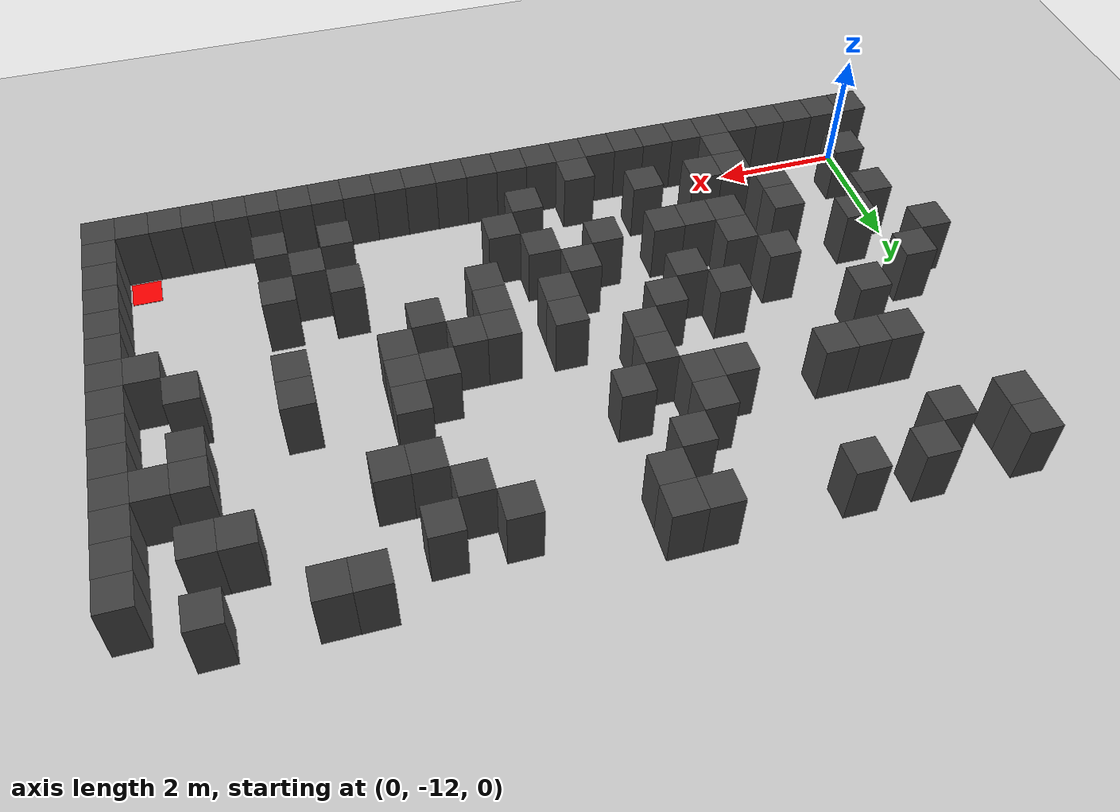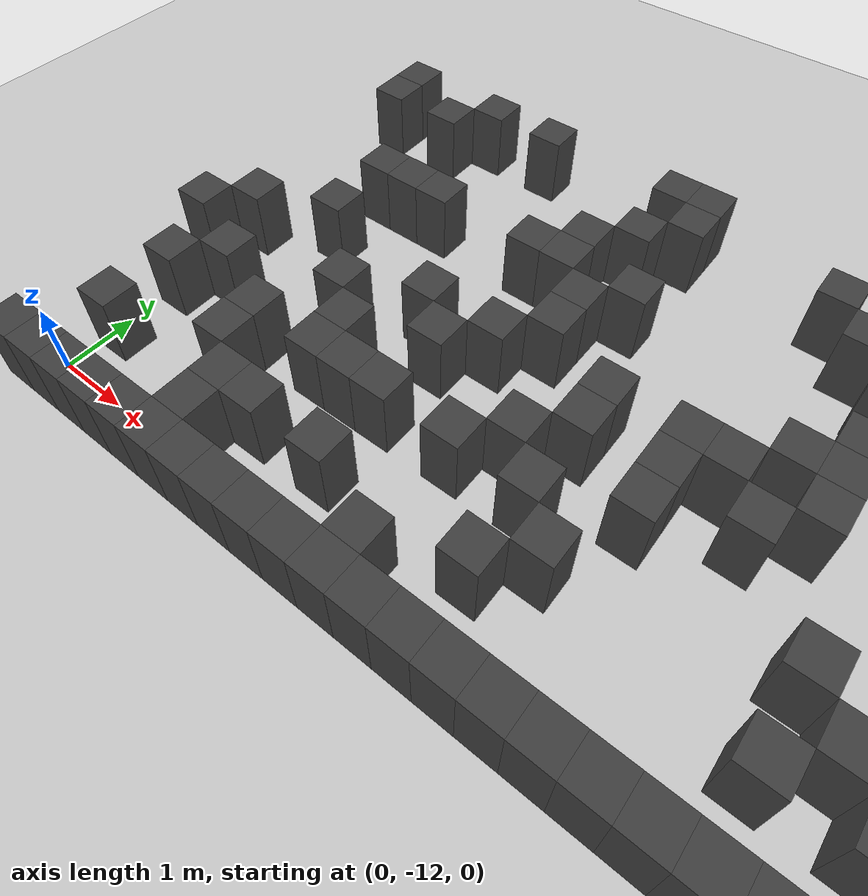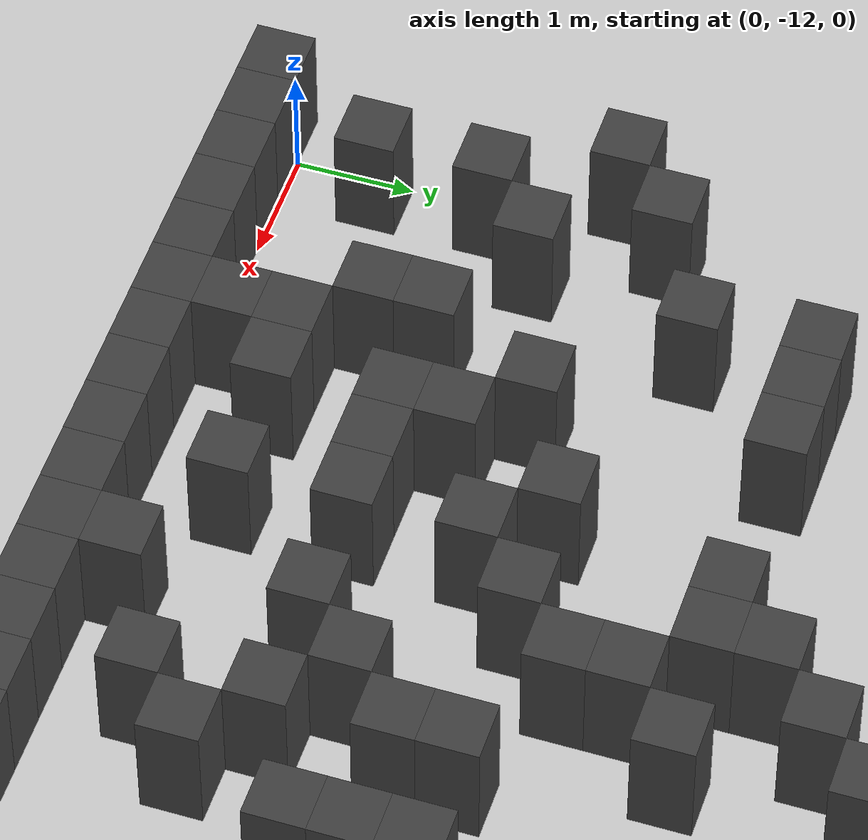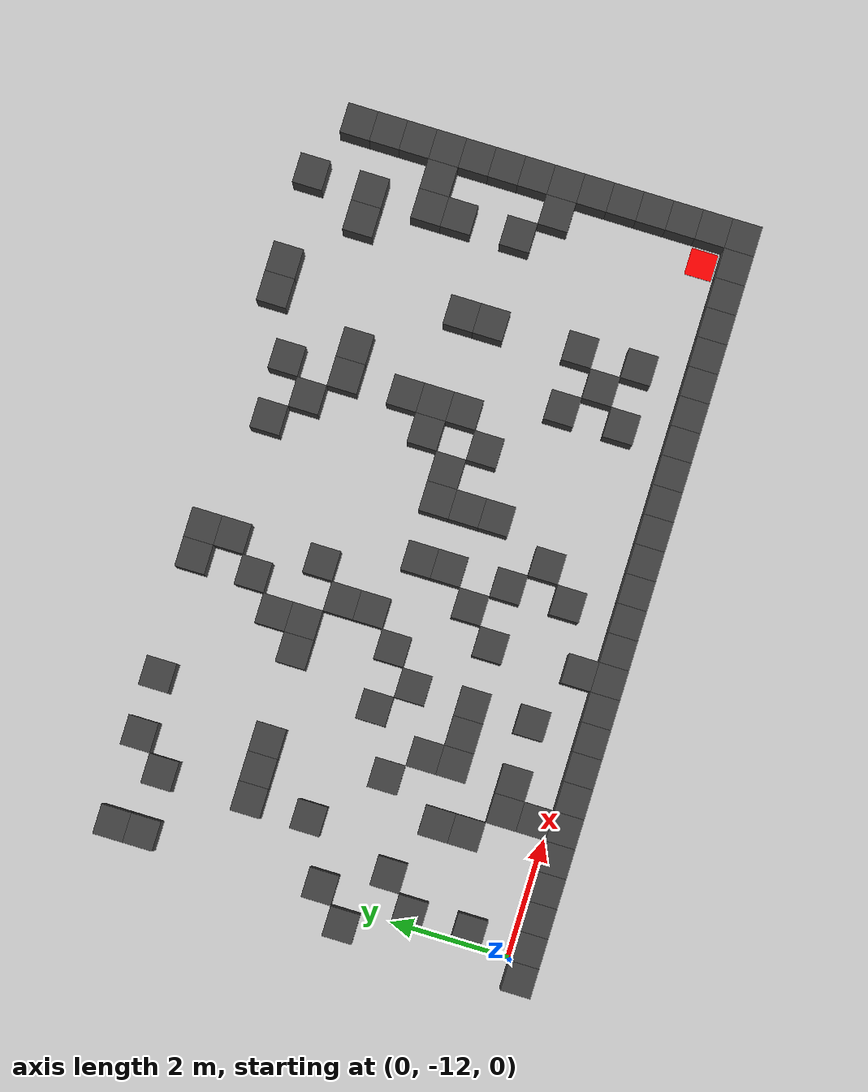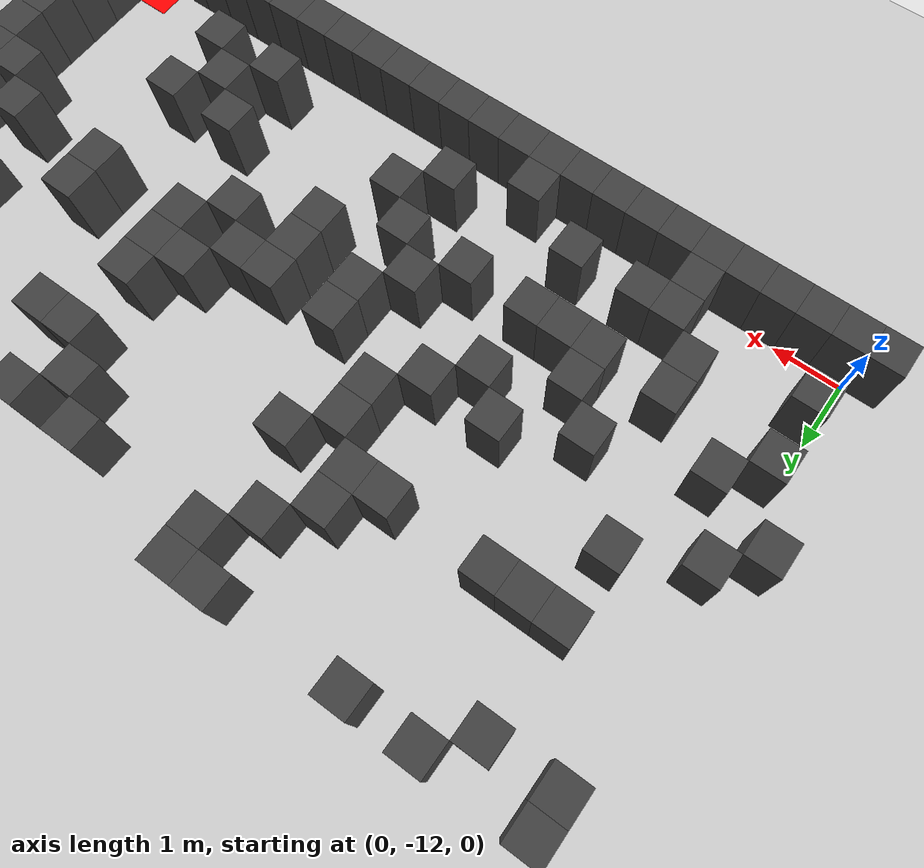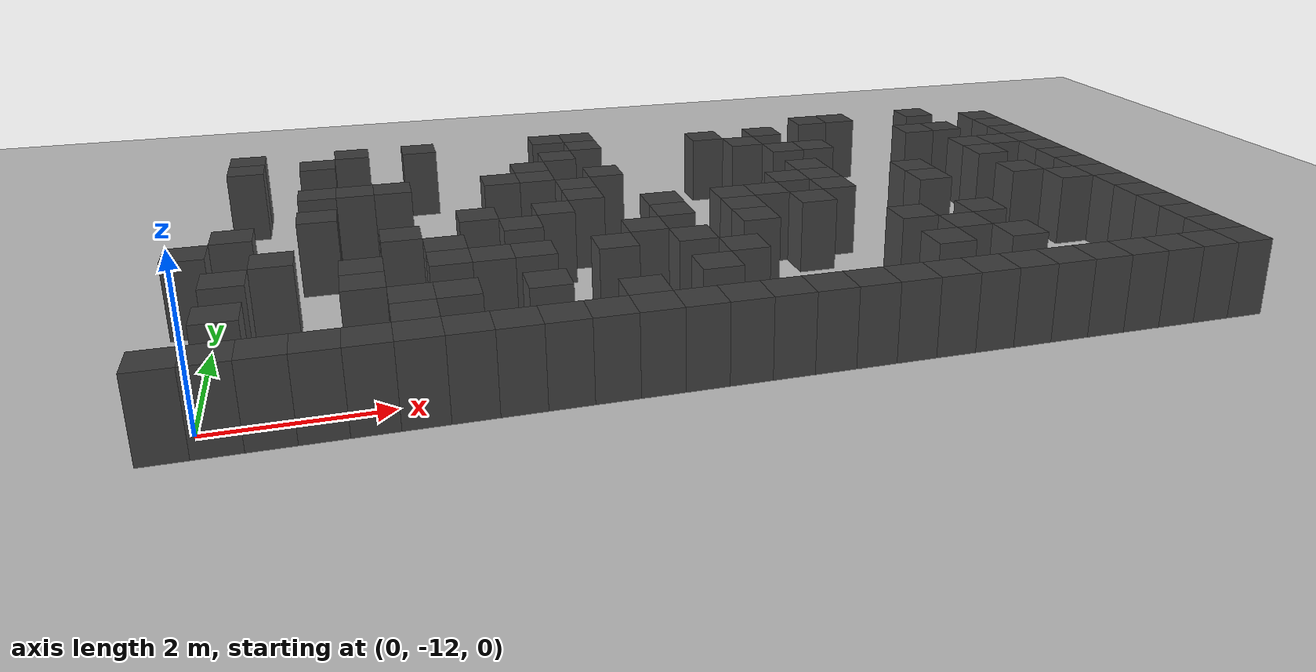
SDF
<sdf version="1.7">
 <world name="map_4557">
  <model name="ground_plane">
   <static>true</static>
   <link name="link">
    <collision name="collision">
     <geometry><plane><normal>0 0 1</normal><size>200 200</size></plane></geometry>
    </collision>
    <visual name="visual">
     <geometry><plane><normal>0 0 1</normal><size>200 200</size></plane></geometry>
     <material><ambient>0.8 0.8 0.8 1</ambient><diffuse>0.8 0.8 0.8 1</diffuse></material>
    </visual>
   </link>
  </model>
  <model name="maze_environment">
   <static>true</static>
   <link name="wall_483">
    <pose>0.250 -5.250 0.500 0 0 0</pose>
    <collision name="col"><geometry><box><size>0.5 0.5 1.0</size></box></geometry></collision>
    <visual name="vis">
     <geometry><box><size>0.5 0.5 1.0</size></box></geometry>
     <material><ambient>0.15 0.15 0.15 1</ambient><diffuse>0.25 0.25 0.25 1</diffuse></material>
    </visual>
   </link>
   <link name="wall_484">
    <pose>1.750 -5.250 0.500 0 0 0</pose>
    <collision name="col"><geometry><box><size>0.5 0.5 1.0</size></box></geometry></collision>
    <visual name="vis">
     <geometry><box><size>0.5 0.5 1.0</size></box></geometry>
     <material><ambient>0.15 0.15 0.15 1</ambient><diffuse>0.25 0.25 0.25 1</diffuse></material>
    </visual>
   </link>
   <link name="wall_485">
    <pose>2.750 -5.250 0.500 0 0 0</pose>
    <collision name="col"><geometry><box><size>0.5 0.5 1.0</size></box></geometry></collision>
    <visual name="vis">
     <geometry><box><size>0.5 0.5 1.0</size></box></geometry>
     <material><ambient>0.15 0.15 0.15 1</ambient><diffuse>0.25 0.25 0.25 1</diffuse></material>
    </visual>
   </link>
   <link name="wall_486">
    <pose>4.750 -5.250 0.500 0 0 0</pose>
    <collision name="col"><geometry><box><size>0.5 0.5 1.0</size></box></geometry></collision>
    <visual name="vis">
     <geometry><box><size>0.5 0.5 1.0</size></box></geometry>
     <material><ambient>0.15 0.15 0.15 1</ambient><diffuse>0.25 0.25 0.25 1</diffuse></material>
    </visual>
   </link>
   <link name="wall_487">
    <pose>5.250 -5.250 0.500 0 0 0</pose>
    <collision name="col"><geometry><box><size>0.5 0.5 1.0</size></box></geometry></collision>
    <visual name="vis">
     <geometry><box><size>0.5 0.5 1.0</size></box></geometry>
     <material><ambient>0.15 0.15 0.15 1</ambient><diffuse>0.25 0.25 0.25 1</diffuse></material>
    </visual>
   </link>
   <link name="wall_488">
    <pose>9.250 -5.250 0.500 0 0 0</pose>
    <collision name="col"><geometry><box><size>0.5 0.5 1.0</size></box></geometry></collision>
    <visual name="vis">
     <geometry><box><size>0.5 0.5 1.0</size></box></geometry>
     <material><ambient>0.15 0.15 0.15 1</ambient><diffuse>0.25 0.25 0.25 1</diffuse></material>
    </visual>
   </link>
   <link name="wall_489">
    <pose>9.750 -5.250 0.500 0 0 0</pose>
    <collision name="col"><geometry><box><size>0.5 0.5 1.0</size></box></geometry></collision>
    <visual name="vis">
     <geometry><box><size>0.5 0.5 1.0</size></box></geometry>
     <material><ambient>0.15 0.15 0.15 1</ambient><diffuse>0.25 0.25 0.25 1</diffuse></material>
    </visual>
   </link>
   <link name="wall_490">
    <pose>11.250 -5.250 0.500 0 0 0</pose>
    <collision name="col"><geometry><box><size>0.5 0.5 1.0</size></box></geometry></collision>
    <visual name="vis">
     <geometry><box><size>0.5 0.5 1.0</size></box></geometry>
     <material><ambient>0.15 0.15 0.15 1</ambient><diffuse>0.25 0.25 0.25 1</diffuse></material>
    </visual>
   </link>
   <link name="wall_499">
    <pose>0.250 -5.750 0.500 0 0 0</pose>
    <collision name="col"><geometry><box><size>0.5 0.5 1.0</size></box></geometry></collision>
    <visual name="vis">
     <geometry><box><size>0.5 0.5 1.0</size></box></geometry>
     <material><ambient>0.15 0.15 0.15 1</ambient><diffuse>0.25 0.25 0.25 1</diffuse></material>
    </visual>
   </link>
   <link name="wall_500">
    <pose>1.250 -5.750 0.500 0 0 0</pose>
    <collision name="col"><geometry><box><size>0.5 0.5 1.0</size></box></geometry></collision>
    <visual name="vis">
     <geometry><box><size>0.5 0.5 1.0</size></box></geometry>
     <material><ambient>0.15 0.15 0.15 1</ambient><diffuse>0.25 0.25 0.25 1</diffuse></material>
    </visual>
   </link>
   <link name="wall_501">
    <pose>5.250 -5.750 0.500 0 0 0</pose>
    <collision name="col"><geometry><box><size>0.5 0.5 1.0</size></box></geometry></collision>
    <visual name="vis">
     <geometry><box><size>0.5 0.5 1.0</size></box></geometry>
     <material><ambient>0.15 0.15 0.15 1</ambient><diffuse>0.25 0.25 0.25 1</diffuse></material>
    </visual>
   </link>
   <link name="wall_502">
    <pose>7.250 -5.750 0.500 0 0 0</pose>
    <collision name="col"><geometry><box><size>0.5 0.5 1.0</size></box></geometry></collision>
    <visual name="vis">
     <geometry><box><size>0.5 0.5 1.0</size></box></geometry>
     <material><ambient>0.15 0.15 0.15 1</ambient><diffuse>0.25 0.25 0.25 1</diffuse></material>
    </visual>
   </link>
   <link name="wall_503">
    <pose>8.250 -5.750 0.500 0 0 0</pose>
    <collision name="col"><geometry><box><size>0.5 0.5 1.0</size></box></geometry></collision>
    <visual name="vis">
     <geometry><box><size>0.5 0.5 1.0</size></box></geometry>
     <material><ambient>0.15 0.15 0.15 1</ambient><diffuse>0.25 0.25 0.25 1</diffuse></material>
    </visual>
   </link>
   <link name="wall_504">
    <pose>12.250 -5.750 0.500 0 0 0</pose>
    <collision name="col"><geometry><box><size>0.5 0.5 1.0</size></box></geometry></collision>
    <visual name="vis">
     <geometry><box><size>0.5 0.5 1.0</size></box></geometry>
     <material><ambient>0.15 0.15 0.15 1</ambient><diffuse>0.25 0.25 0.25 1</diffuse></material>
    </visual>
   </link>
   <link name="wall_513">
    <pose>4.750 -6.250 0.500 0 0 0</pose>
    <collision name="col"><geometry><box><size>0.5 0.5 1.0</size></box></geometry></collision>
    <visual name="vis">
     <geometry><box><size>0.5 0.5 1.0</size></box></geometry>
     <material><ambient>0.15 0.15 0.15 1</ambient><diffuse>0.25 0.25 0.25 1</diffuse></material>
    </visual>
   </link>
   <link name="wall_514">
    <pose>7.750 -6.250 0.500 0 0 0</pose>
    <collision name="col"><geometry><box><size>0.5 0.5 1.0</size></box></geometry></collision>
    <visual name="vis">
     <geometry><box><size>0.5 0.5 1.0</size></box></geometry>
     <material><ambient>0.15 0.15 0.15 1</ambient><diffuse>0.25 0.25 0.25 1</diffuse></material>
    </visual>
   </link>
   <link name="wall_515">
    <pose>10.750 -6.250 0.500 0 0 0</pose>
    <collision name="col"><geometry><box><size>0.5 0.5 1.0</size></box></geometry></collision>
    <visual name="vis">
     <geometry><box><size>0.5 0.5 1.0</size></box></geometry>
     <material><ambient>0.15 0.15 0.15 1</ambient><diffuse>0.25 0.25 0.25 1</diffuse></material>
    </visual>
   </link>
   <link name="wall_516">
    <pose>11.250 -6.250 0.500 0 0 0</pose>
    <collision name="col"><geometry><box><size>0.5 0.5 1.0</size></box></geometry></collision>
    <visual name="vis">
     <geometry><box><size>0.5 0.5 1.0</size></box></geometry>
     <material><ambient>0.15 0.15 0.15 1</ambient><diffuse>0.25 0.25 0.25 1</diffuse></material>
    </visual>
   </link>
   <link name="wall_517">
    <pose>12.250 -6.250 0.500 0 0 0</pose>
    <collision name="col"><geometry><box><size>0.5 0.5 1.0</size></box></geometry></collision>
    <visual name="vis">
     <geometry><box><size>0.5 0.5 1.0</size></box></geometry>
     <material><ambient>0.15 0.15 0.15 1</ambient><diffuse>0.25 0.25 0.25 1</diffuse></material>
    </visual>
   </link>
   <link name="wall_522">
    <pose>4.250 -6.750 0.500 0 0 0</pose>
    <collision name="col"><geometry><box><size>0.5 0.5 1.0</size></box></geometry></collision>
    <visual name="vis">
     <geometry><box><size>0.5 0.5 1.0</size></box></geometry>
     <material><ambient>0.15 0.15 0.15 1</ambient><diffuse>0.25 0.25 0.25 1</diffuse></material>
    </visual>
   </link>
   <link name="wall_523">
    <pose>8.250 -6.750 0.500 0 0 0</pose>
    <collision name="col"><geometry><box><size>0.5 0.5 1.0</size></box></geometry></collision>
    <visual name="vis">
     <geometry><box><size>0.5 0.5 1.0</size></box></geometry>
     <material><ambient>0.15 0.15 0.15 1</ambient><diffuse>0.25 0.25 0.25 1</diffuse></material>
    </visual>
   </link>
   <link name="wall_524">
    <pose>8.750 -6.750 0.500 0 0 0</pose>
    <collision name="col"><geometry><box><size>0.5 0.5 1.0</size></box></geometry></collision>
    <visual name="vis">
     <geometry><box><size>0.5 0.5 1.0</size></box></geometry>
     <material><ambient>0.15 0.15 0.15 1</ambient><diffuse>0.25 0.25 0.25 1</diffuse></material>
    </visual>
   </link>
   <link name="wall_525">
    <pose>12.250 -6.750 0.500 0 0 0</pose>
    <collision name="col"><geometry><box><size>0.5 0.5 1.0</size></box></geometry></collision>
    <visual name="vis">
     <geometry><box><size>0.5 0.5 1.0</size></box></geometry>
     <material><ambient>0.15 0.15 0.15 1</ambient><diffuse>0.25 0.25 0.25 1</diffuse></material>
    </visual>
   </link>
   <link name="wall_530">
    <pose>1.250 -7.250 0.500 0 0 0</pose>
    <collision name="col"><geometry><box><size>0.5 0.5 1.0</size></box></geometry></collision>
    <visual name="vis">
     <geometry><box><size>0.5 0.5 1.0</size></box></geometry>
     <material><ambient>0.15 0.15 0.15 1</ambient><diffuse>0.25 0.25 0.25 1</diffuse></material>
    </visual>
   </link>
   <link name="wall_531">
    <pose>1.750 -7.250 0.500 0 0 0</pose>
    <collision name="col"><geometry><box><size>0.5 0.5 1.0</size></box></geometry></collision>
    <visual name="vis">
     <geometry><box><size>0.5 0.5 1.0</size></box></geometry>
     <material><ambient>0.15 0.15 0.15 1</ambient><diffuse>0.25 0.25 0.25 1</diffuse></material>
    </visual>
   </link>
   <link name="wall_532">
    <pose>2.250 -7.250 0.500 0 0 0</pose>
    <collision name="col"><geometry><box><size>0.5 0.5 1.0</size></box></geometry></collision>
    <visual name="vis">
     <geometry><box><size>0.5 0.5 1.0</size></box></geometry>
     <material><ambient>0.15 0.15 0.15 1</ambient><diffuse>0.25 0.25 0.25 1</diffuse></material>
    </visual>
   </link>
   <link name="wall_533">
    <pose>3.750 -7.250 0.500 0 0 0</pose>
    <collision name="col"><geometry><box><size>0.5 0.5 1.0</size></box></geometry></collision>
    <visual name="vis">
     <geometry><box><size>0.5 0.5 1.0</size></box></geometry>
     <material><ambient>0.15 0.15 0.15 1</ambient><diffuse>0.25 0.25 0.25 1</diffuse></material>
    </visual>
   </link>
   <link name="wall_534">
    <pose>4.250 -7.250 0.500 0 0 0</pose>
    <collision name="col"><geometry><box><size>0.5 0.5 1.0</size></box></geometry></collision>
    <visual name="vis">
     <geometry><box><size>0.5 0.5 1.0</size></box></geometry>
     <material><ambient>0.15 0.15 0.15 1</ambient><diffuse>0.25 0.25 0.25 1</diffuse></material>
    </visual>
   </link>
   <link name="wall_535">
    <pose>5.250 -7.250 0.500 0 0 0</pose>
    <collision name="col"><geometry><box><size>0.5 0.5 1.0</size></box></geometry></collision>
    <visual name="vis">
     <geometry><box><size>0.5 0.5 1.0</size></box></geometry>
     <material><ambient>0.15 0.15 0.15 1</ambient><diffuse>0.25 0.25 0.25 1</diffuse></material>
    </visual>
   </link>
   <link name="wall_536">
    <pose>11.250 -7.250 0.500 0 0 0</pose>
    <collision name="col"><geometry><box><size>0.5 0.5 1.0</size></box></geometry></collision>
    <visual name="vis">
     <geometry><box><size>0.5 0.5 1.0</size></box></geometry>
     <material><ambient>0.15 0.15 0.15 1</ambient><diffuse>0.25 0.25 0.25 1</diffuse></material>
    </visual>
   </link>
   <link name="wall_537">
    <pose>11.750 -7.250 0.500 0 0 0</pose>
    <collision name="col"><geometry><box><size>0.5 0.5 1.0</size></box></geometry></collision>
    <visual name="vis">
     <geometry><box><size>0.5 0.5 1.0</size></box></geometry>
     <material><ambient>0.15 0.15 0.15 1</ambient><diffuse>0.25 0.25 0.25 1</diffuse></material>
    </visual>
   </link>
   <link name="wall_538">
    <pose>12.250 -7.250 0.500 0 0 0</pose>
    <collision name="col"><geometry><box><size>0.5 0.5 1.0</size></box></geometry></collision>
    <visual name="vis">
     <geometry><box><size>0.5 0.5 1.0</size></box></geometry>
     <material><ambient>0.15 0.15 0.15 1</ambient><diffuse>0.25 0.25 0.25 1</diffuse></material>
    </visual>
   </link>
   <link name="wall_541">
    <pose>4.750 -7.750 0.500 0 0 0</pose>
    <collision name="col"><geometry><box><size>0.5 0.5 1.0</size></box></geometry></collision>
    <visual name="vis">
     <geometry><box><size>0.5 0.5 1.0</size></box></geometry>
     <material><ambient>0.15 0.15 0.15 1</ambient><diffuse>0.25 0.25 0.25 1</diffuse></material>
    </visual>
   </link>
   <link name="wall_542">
    <pose>8.250 -7.750 0.500 0 0 0</pose>
    <collision name="col"><geometry><box><size>0.5 0.5 1.0</size></box></geometry></collision>
    <visual name="vis">
     <geometry><box><size>0.5 0.5 1.0</size></box></geometry>
     <material><ambient>0.15 0.15 0.15 1</ambient><diffuse>0.25 0.25 0.25 1</diffuse></material>
    </visual>
   </link>
   <link name="wall_543">
    <pose>11.250 -7.750 0.500 0 0 0</pose>
    <collision name="col"><geometry><box><size>0.5 0.5 1.0</size></box></geometry></collision>
    <visual name="vis">
     <geometry><box><size>0.5 0.5 1.0</size></box></geometry>
     <material><ambient>0.15 0.15 0.15 1</ambient><diffuse>0.25 0.25 0.25 1</diffuse></material>
    </visual>
   </link>
   <link name="wall_544">
    <pose>12.250 -7.750 0.500 0 0 0</pose>
    <collision name="col"><geometry><box><size>0.5 0.5 1.0</size></box></geometry></collision>
    <visual name="vis">
     <geometry><box><size>0.5 0.5 1.0</size></box></geometry>
     <material><ambient>0.15 0.15 0.15 1</ambient><diffuse>0.25 0.25 0.25 1</diffuse></material>
    </visual>
   </link>
   <link name="wall_550">
    <pose>1.250 -8.250 0.500 0 0 0</pose>
    <collision name="col"><geometry><box><size>0.5 0.5 1.0</size></box></geometry></collision>
    <visual name="vis">
     <geometry><box><size>0.5 0.5 1.0</size></box></geometry>
     <material><ambient>0.15 0.15 0.15 1</ambient><diffuse>0.25 0.25 0.25 1</diffuse></material>
    </visual>
   </link>
   <link name="wall_551">
    <pose>4.750 -8.250 0.500 0 0 0</pose>
    <collision name="col"><geometry><box><size>0.5 0.5 1.0</size></box></geometry></collision>
    <visual name="vis">
     <geometry><box><size>0.5 0.5 1.0</size></box></geometry>
     <material><ambient>0.15 0.15 0.15 1</ambient><diffuse>0.25 0.25 0.25 1</diffuse></material>
    </visual>
   </link>
   <link name="wall_552">
    <pose>7.750 -8.250 0.500 0 0 0</pose>
    <collision name="col"><geometry><box><size>0.5 0.5 1.0</size></box></geometry></collision>
    <visual name="vis">
     <geometry><box><size>0.5 0.5 1.0</size></box></geometry>
     <material><ambient>0.15 0.15 0.15 1</ambient><diffuse>0.25 0.25 0.25 1</diffuse></material>
    </visual>
   </link>
   <link name="wall_553">
    <pose>8.250 -8.250 0.500 0 0 0</pose>
    <collision name="col"><geometry><box><size>0.5 0.5 1.0</size></box></geometry></collision>
    <visual name="vis">
     <geometry><box><size>0.5 0.5 1.0</size></box></geometry>
     <material><ambient>0.15 0.15 0.15 1</ambient><diffuse>0.25 0.25 0.25 1</diffuse></material>
    </visual>
   </link>
   <link name="wall_554">
    <pose>9.750 -8.250 0.500 0 0 0</pose>
    <collision name="col"><geometry><box><size>0.5 0.5 1.0</size></box></geometry></collision>
    <visual name="vis">
     <geometry><box><size>0.5 0.5 1.0</size></box></geometry>
     <material><ambient>0.15 0.15 0.15 1</ambient><diffuse>0.25 0.25 0.25 1</diffuse></material>
    </visual>
   </link>
   <link name="wall_555">
    <pose>12.250 -8.250 0.500 0 0 0</pose>
    <collision name="col"><geometry><box><size>0.5 0.5 1.0</size></box></geometry></collision>
    <visual name="vis">
     <geometry><box><size>0.5 0.5 1.0</size></box></geometry>
     <material><ambient>0.15 0.15 0.15 1</ambient><diffuse>0.25 0.25 0.25 1</diffuse></material>
    </visual>
   </link>
   <link name="wall_563">
    <pose>0.250 -8.750 0.500 0 0 0</pose>
    <collision name="col"><geometry><box><size>0.5 0.5 1.0</size></box></geometry></collision>
    <visual name="vis">
     <geometry><box><size>0.5 0.5 1.0</size></box></geometry>
     <material><ambient>0.15 0.15 0.15 1</ambient><diffuse>0.25 0.25 0.25 1</diffuse></material>
    </visual>
   </link>
   <link name="wall_564">
    <pose>3.250 -8.750 0.500 0 0 0</pose>
    <collision name="col"><geometry><box><size>0.5 0.5 1.0</size></box></geometry></collision>
    <visual name="vis">
     <geometry><box><size>0.5 0.5 1.0</size></box></geometry>
     <material><ambient>0.15 0.15 0.15 1</ambient><diffuse>0.25 0.25 0.25 1</diffuse></material>
    </visual>
   </link>
   <link name="wall_565">
    <pose>4.250 -8.750 0.500 0 0 0</pose>
    <collision name="col"><geometry><box><size>0.5 0.5 1.0</size></box></geometry></collision>
    <visual name="vis">
     <geometry><box><size>0.5 0.5 1.0</size></box></geometry>
     <material><ambient>0.15 0.15 0.15 1</ambient><diffuse>0.25 0.25 0.25 1</diffuse></material>
    </visual>
   </link>
   <link name="wall_566">
    <pose>5.750 -8.750 0.500 0 0 0</pose>
    <collision name="col"><geometry><box><size>0.5 0.5 1.0</size></box></geometry></collision>
    <visual name="vis">
     <geometry><box><size>0.5 0.5 1.0</size></box></geometry>
     <material><ambient>0.15 0.15 0.15 1</ambient><diffuse>0.25 0.25 0.25 1</diffuse></material>
    </visual>
   </link>
   <link name="wall_567">
    <pose>6.750 -8.750 0.500 0 0 0</pose>
    <collision name="col"><geometry><box><size>0.5 0.5 1.0</size></box></geometry></collision>
    <visual name="vis">
     <geometry><box><size>0.5 0.5 1.0</size></box></geometry>
     <material><ambient>0.15 0.15 0.15 1</ambient><diffuse>0.25 0.25 0.25 1</diffuse></material>
    </visual>
   </link>
   <link name="wall_568">
    <pose>7.250 -8.750 0.500 0 0 0</pose>
    <collision name="col"><geometry><box><size>0.5 0.5 1.0</size></box></geometry></collision>
    <visual name="vis">
     <geometry><box><size>0.5 0.5 1.0</size></box></geometry>
     <material><ambient>0.15 0.15 0.15 1</ambient><diffuse>0.25 0.25 0.25 1</diffuse></material>
    </visual>
   </link>
   <link name="wall_569">
    <pose>8.250 -8.750 0.500 0 0 0</pose>
    <collision name="col"><geometry><box><size>0.5 0.5 1.0</size></box></geometry></collision>
    <visual name="vis">
     <geometry><box><size>0.5 0.5 1.0</size></box></geometry>
     <material><ambient>0.15 0.15 0.15 1</ambient><diffuse>0.25 0.25 0.25 1</diffuse></material>
    </visual>
   </link>
   <link name="wall_570">
    <pose>9.750 -8.750 0.500 0 0 0</pose>
    <collision name="col"><geometry><box><size>0.5 0.5 1.0</size></box></geometry></collision>
    <visual name="vis">
     <geometry><box><size>0.5 0.5 1.0</size></box></geometry>
     <material><ambient>0.15 0.15 0.15 1</ambient><diffuse>0.25 0.25 0.25 1</diffuse></material>
    </visual>
   </link>
   <link name="wall_571">
    <pose>11.250 -8.750 0.500 0 0 0</pose>
    <collision name="col"><geometry><box><size>0.5 0.5 1.0</size></box></geometry></collision>
    <visual name="vis">
     <geometry><box><size>0.5 0.5 1.0</size></box></geometry>
     <material><ambient>0.15 0.15 0.15 1</ambient><diffuse>0.25 0.25 0.25 1</diffuse></material>
    </visual>
   </link>
   <link name="wall_572">
    <pose>12.250 -8.750 0.500 0 0 0</pose>
    <collision name="col"><geometry><box><size>0.5 0.5 1.0</size></box></geometry></collision>
    <visual name="vis">
     <geometry><box><size>0.5 0.5 1.0</size></box></geometry>
     <material><ambient>0.15 0.15 0.15 1</ambient><diffuse>0.25 0.25 0.25 1</diffuse></material>
    </visual>
   </link>
   <link name="wall_582">
    <pose>-0.250 -9.250 0.500 0 0 0</pose>
    <collision name="col"><geometry><box><size>0.5 0.5 1.0</size></box></geometry></collision>
    <visual name="vis">
     <geometry><box><size>0.5 0.5 1.0</size></box></geometry>
     <material><ambient>0.15 0.15 0.15 1</ambient><diffuse>0.25 0.25 0.25 1</diffuse></material>
    </visual>
   </link>
   <link name="wall_583">
    <pose>2.250 -9.250 0.500 0 0 0</pose>
    <collision name="col"><geometry><box><size>0.5 0.5 1.0</size></box></geometry></collision>
    <visual name="vis">
     <geometry><box><size>0.5 0.5 1.0</size></box></geometry>
     <material><ambient>0.15 0.15 0.15 1</ambient><diffuse>0.25 0.25 0.25 1</diffuse></material>
    </visual>
   </link>
   <link name="wall_584">
    <pose>3.750 -9.250 0.500 0 0 0</pose>
    <collision name="col"><geometry><box><size>0.5 0.5 1.0</size></box></geometry></collision>
    <visual name="vis">
     <geometry><box><size>0.5 0.5 1.0</size></box></geometry>
     <material><ambient>0.15 0.15 0.15 1</ambient><diffuse>0.25 0.25 0.25 1</diffuse></material>
    </visual>
   </link>
   <link name="wall_585">
    <pose>5.750 -9.250 0.500 0 0 0</pose>
    <collision name="col"><geometry><box><size>0.5 0.5 1.0</size></box></geometry></collision>
    <visual name="vis">
     <geometry><box><size>0.5 0.5 1.0</size></box></geometry>
     <material><ambient>0.15 0.15 0.15 1</ambient><diffuse>0.25 0.25 0.25 1</diffuse></material>
    </visual>
   </link>
   <link name="wall_586">
    <pose>6.750 -9.250 0.500 0 0 0</pose>
    <collision name="col"><geometry><box><size>0.5 0.5 1.0</size></box></geometry></collision>
    <visual name="vis">
     <geometry><box><size>0.5 0.5 1.0</size></box></geometry>
     <material><ambient>0.15 0.15 0.15 1</ambient><diffuse>0.25 0.25 0.25 1</diffuse></material>
    </visual>
   </link>
   <link name="wall_587">
    <pose>7.750 -9.250 0.500 0 0 0</pose>
    <collision name="col"><geometry><box><size>0.5 0.5 1.0</size></box></geometry></collision>
    <visual name="vis">
     <geometry><box><size>0.5 0.5 1.0</size></box></geometry>
     <material><ambient>0.15 0.15 0.15 1</ambient><diffuse>0.25 0.25 0.25 1</diffuse></material>
    </visual>
   </link>
   <link name="wall_588">
    <pose>11.750 -9.250 0.500 0 0 0</pose>
    <collision name="col"><geometry><box><size>0.5 0.5 1.0</size></box></geometry></collision>
    <visual name="vis">
     <geometry><box><size>0.5 0.5 1.0</size></box></geometry>
     <material><ambient>0.15 0.15 0.15 1</ambient><diffuse>0.25 0.25 0.25 1</diffuse></material>
    </visual>
   </link>
   <link name="wall_589">
    <pose>12.250 -9.250 0.500 0 0 0</pose>
    <collision name="col"><geometry><box><size>0.5 0.5 1.0</size></box></geometry></collision>
    <visual name="vis">
     <geometry><box><size>0.5 0.5 1.0</size></box></geometry>
     <material><ambient>0.15 0.15 0.15 1</ambient><diffuse>0.25 0.25 0.25 1</diffuse></material>
    </visual>
   </link>
   <link name="wall_599">
    <pose>0.750 -9.750 0.500 0 0 0</pose>
    <collision name="col"><geometry><box><size>0.5 0.5 1.0</size></box></geometry></collision>
    <visual name="vis">
     <geometry><box><size>0.5 0.5 1.0</size></box></geometry>
     <material><ambient>0.15 0.15 0.15 1</ambient><diffuse>0.25 0.25 0.25 1</diffuse></material>
    </visual>
   </link>
   <link name="wall_600">
    <pose>2.750 -9.750 0.500 0 0 0</pose>
    <collision name="col"><geometry><box><size>0.5 0.5 1.0</size></box></geometry></collision>
    <visual name="vis">
     <geometry><box><size>0.5 0.5 1.0</size></box></geometry>
     <material><ambient>0.15 0.15 0.15 1</ambient><diffuse>0.25 0.25 0.25 1</diffuse></material>
    </visual>
   </link>
   <link name="wall_601">
    <pose>5.250 -9.750 0.500 0 0 0</pose>
    <collision name="col"><geometry><box><size>0.5 0.5 1.0</size></box></geometry></collision>
    <visual name="vis">
     <geometry><box><size>0.5 0.5 1.0</size></box></geometry>
     <material><ambient>0.15 0.15 0.15 1</ambient><diffuse>0.25 0.25 0.25 1</diffuse></material>
    </visual>
   </link>
   <link name="wall_602">
    <pose>6.750 -9.750 0.500 0 0 0</pose>
    <collision name="col"><geometry><box><size>0.5 0.5 1.0</size></box></geometry></collision>
    <visual name="vis">
     <geometry><box><size>0.5 0.5 1.0</size></box></geometry>
     <material><ambient>0.15 0.15 0.15 1</ambient><diffuse>0.25 0.25 0.25 1</diffuse></material>
    </visual>
   </link>
   <link name="wall_603">
    <pose>12.250 -9.750 0.500 0 0 0</pose>
    <collision name="col"><geometry><box><size>0.5 0.5 1.0</size></box></geometry></collision>
    <visual name="vis">
     <geometry><box><size>0.5 0.5 1.0</size></box></geometry>
     <material><ambient>0.15 0.15 0.15 1</ambient><diffuse>0.25 0.25 0.25 1</diffuse></material>
    </visual>
   </link>
   <link name="wall_610">
    <pose>0.250 -10.250 0.500 0 0 0</pose>
    <collision name="col"><geometry><box><size>0.5 0.5 1.0</size></box></geometry></collision>
    <visual name="vis">
     <geometry><box><size>0.5 0.5 1.0</size></box></geometry>
     <material><ambient>0.15 0.15 0.15 1</ambient><diffuse>0.25 0.25 0.25 1</diffuse></material>
    </visual>
   </link>
   <link name="wall_611">
    <pose>1.750 -10.250 0.500 0 0 0</pose>
    <collision name="col"><geometry><box><size>0.5 0.5 1.0</size></box></geometry></collision>
    <visual name="vis">
     <geometry><box><size>0.5 0.5 1.0</size></box></geometry>
     <material><ambient>0.15 0.15 0.15 1</ambient><diffuse>0.25 0.25 0.25 1</diffuse></material>
    </visual>
   </link>
   <link name="wall_612">
    <pose>2.750 -10.250 0.500 0 0 0</pose>
    <collision name="col"><geometry><box><size>0.5 0.5 1.0</size></box></geometry></collision>
    <visual name="vis">
     <geometry><box><size>0.5 0.5 1.0</size></box></geometry>
     <material><ambient>0.15 0.15 0.15 1</ambient><diffuse>0.25 0.25 0.25 1</diffuse></material>
    </visual>
   </link>
   <link name="wall_613">
    <pose>3.250 -10.250 0.500 0 0 0</pose>
    <collision name="col"><geometry><box><size>0.5 0.5 1.0</size></box></geometry></collision>
    <visual name="vis">
     <geometry><box><size>0.5 0.5 1.0</size></box></geometry>
     <material><ambient>0.15 0.15 0.15 1</ambient><diffuse>0.25 0.25 0.25 1</diffuse></material>
    </visual>
   </link>
   <link name="wall_614">
    <pose>3.750 -10.250 0.500 0 0 0</pose>
    <collision name="col"><geometry><box><size>0.5 0.5 1.0</size></box></geometry></collision>
    <visual name="vis">
     <geometry><box><size>0.5 0.5 1.0</size></box></geometry>
     <material><ambient>0.15 0.15 0.15 1</ambient><diffuse>0.25 0.25 0.25 1</diffuse></material>
    </visual>
   </link>
   <link name="wall_615">
    <pose>4.750 -10.250 0.500 0 0 0</pose>
    <collision name="col"><geometry><box><size>0.5 0.5 1.0</size></box></geometry></collision>
    <visual name="vis">
     <geometry><box><size>0.5 0.5 1.0</size></box></geometry>
     <material><ambient>0.15 0.15 0.15 1</ambient><diffuse>0.25 0.25 0.25 1</diffuse></material>
    </visual>
   </link>
   <link name="wall_616">
    <pose>5.750 -10.250 0.500 0 0 0</pose>
    <collision name="col"><geometry><box><size>0.5 0.5 1.0</size></box></geometry></collision>
    <visual name="vis">
     <geometry><box><size>0.5 0.5 1.0</size></box></geometry>
     <material><ambient>0.15 0.15 0.15 1</ambient><diffuse>0.25 0.25 0.25 1</diffuse></material>
    </visual>
   </link>
   <link name="wall_617">
    <pose>8.750 -10.250 0.500 0 0 0</pose>
    <collision name="col"><geometry><box><size>0.5 0.5 1.0</size></box></geometry></collision>
    <visual name="vis">
     <geometry><box><size>0.5 0.5 1.0</size></box></geometry>
     <material><ambient>0.15 0.15 0.15 1</ambient><diffuse>0.25 0.25 0.25 1</diffuse></material>
    </visual>
   </link>
   <link name="wall_618">
    <pose>9.750 -10.250 0.500 0 0 0</pose>
    <collision name="col"><geometry><box><size>0.5 0.5 1.0</size></box></geometry></collision>
    <visual name="vis">
     <geometry><box><size>0.5 0.5 1.0</size></box></geometry>
     <material><ambient>0.15 0.15 0.15 1</ambient><diffuse>0.25 0.25 0.25 1</diffuse></material>
    </visual>
   </link>
   <link name="wall_619">
    <pose>12.250 -10.250 0.500 0 0 0</pose>
    <collision name="col"><geometry><box><size>0.5 0.5 1.0</size></box></geometry></collision>
    <visual name="vis">
     <geometry><box><size>0.5 0.5 1.0</size></box></geometry>
     <material><ambient>0.15 0.15 0.15 1</ambient><diffuse>0.25 0.25 0.25 1</diffuse></material>
    </visual>
   </link>
   <link name="wall_624">
    <pose>1.750 -10.750 0.500 0 0 0</pose>
    <collision name="col"><geometry><box><size>0.5 0.5 1.0</size></box></geometry></collision>
    <visual name="vis">
     <geometry><box><size>0.5 0.5 1.0</size></box></geometry>
     <material><ambient>0.15 0.15 0.15 1</ambient><diffuse>0.25 0.25 0.25 1</diffuse></material>
    </visual>
   </link>
   <link name="wall_625">
    <pose>6.250 -10.750 0.500 0 0 0</pose>
    <collision name="col"><geometry><box><size>0.5 0.5 1.0</size></box></geometry></collision>
    <visual name="vis">
     <geometry><box><size>0.5 0.5 1.0</size></box></geometry>
     <material><ambient>0.15 0.15 0.15 1</ambient><diffuse>0.25 0.25 0.25 1</diffuse></material>
    </visual>
   </link>
   <link name="wall_626">
    <pose>9.250 -10.750 0.500 0 0 0</pose>
    <collision name="col"><geometry><box><size>0.5 0.5 1.0</size></box></geometry></collision>
    <visual name="vis">
     <geometry><box><size>0.5 0.5 1.0</size></box></geometry>
     <material><ambient>0.15 0.15 0.15 1</ambient><diffuse>0.25 0.25 0.25 1</diffuse></material>
    </visual>
   </link>
   <link name="wall_627">
    <pose>12.250 -10.750 0.500 0 0 0</pose>
    <collision name="col"><geometry><box><size>0.5 0.5 1.0</size></box></geometry></collision>
    <visual name="vis">
     <geometry><box><size>0.5 0.5 1.0</size></box></geometry>
     <material><ambient>0.15 0.15 0.15 1</ambient><diffuse>0.25 0.25 0.25 1</diffuse></material>
    </visual>
   </link>
   <link name="wall_634">
    <pose>0.250 -11.250 0.500 0 0 0</pose>
    <collision name="col"><geometry><box><size>0.5 0.5 1.0</size></box></geometry></collision>
    <visual name="vis">
     <geometry><box><size>0.5 0.5 1.0</size></box></geometry>
     <material><ambient>0.15 0.15 0.15 1</ambient><diffuse>0.25 0.25 0.25 1</diffuse></material>
    </visual>
   </link>
   <link name="wall_635">
    <pose>2.250 -11.250 0.500 0 0 0</pose>
    <collision name="col"><geometry><box><size>0.5 0.5 1.0</size></box></geometry></collision>
    <visual name="vis">
     <geometry><box><size>0.5 0.5 1.0</size></box></geometry>
     <material><ambient>0.15 0.15 0.15 1</ambient><diffuse>0.25 0.25 0.25 1</diffuse></material>
    </visual>
   </link>
   <link name="wall_636">
    <pose>2.750 -11.250 0.500 0 0 0</pose>
    <collision name="col"><geometry><box><size>0.5 0.5 1.0</size></box></geometry></collision>
    <visual name="vis">
     <geometry><box><size>0.5 0.5 1.0</size></box></geometry>
     <material><ambient>0.15 0.15 0.15 1</ambient><diffuse>0.25 0.25 0.25 1</diffuse></material>
    </visual>
   </link>
   <link name="wall_637">
    <pose>3.750 -11.250 0.500 0 0 0</pose>
    <collision name="col"><geometry><box><size>0.5 0.5 1.0</size></box></geometry></collision>
    <visual name="vis">
     <geometry><box><size>0.5 0.5 1.0</size></box></geometry>
     <material><ambient>0.15 0.15 0.15 1</ambient><diffuse>0.25 0.25 0.25 1</diffuse></material>
    </visual>
   </link>
   <link name="wall_638">
    <pose>5.750 -11.250 0.500 0 0 0</pose>
    <collision name="col"><geometry><box><size>0.5 0.5 1.0</size></box></geometry></collision>
    <visual name="vis">
     <geometry><box><size>0.5 0.5 1.0</size></box></geometry>
     <material><ambient>0.15 0.15 0.15 1</ambient><diffuse>0.25 0.25 0.25 1</diffuse></material>
    </visual>
   </link>
   <link name="wall_639">
    <pose>8.750 -11.250 0.500 0 0 0</pose>
    <collision name="col"><geometry><box><size>0.5 0.5 1.0</size></box></geometry></collision>
    <visual name="vis">
     <geometry><box><size>0.5 0.5 1.0</size></box></geometry>
     <material><ambient>0.15 0.15 0.15 1</ambient><diffuse>0.25 0.25 0.25 1</diffuse></material>
    </visual>
   </link>
   <link name="wall_640">
    <pose>9.750 -11.250 0.500 0 0 0</pose>
    <collision name="col"><geometry><box><size>0.5 0.5 1.0</size></box></geometry></collision>
    <visual name="vis">
     <geometry><box><size>0.5 0.5 1.0</size></box></geometry>
     <material><ambient>0.15 0.15 0.15 1</ambient><diffuse>0.25 0.25 0.25 1</diffuse></material>
    </visual>
   </link>
   <link name="wall_641">
    <pose>12.250 -11.250 0.500 0 0 0</pose>
    <collision name="col"><geometry><box><size>0.5 0.5 1.0</size></box></geometry></collision>
    <visual name="vis">
     <geometry><box><size>0.5 0.5 1.0</size></box></geometry>
     <material><ambient>0.15 0.15 0.15 1</ambient><diffuse>0.25 0.25 0.25 1</diffuse></material>
    </visual>
   </link>
   <link name="wall_648">
    <pose>2.250 -11.750 0.500 0 0 0</pose>
    <collision name="col"><geometry><box><size>0.5 0.5 1.0</size></box></geometry></collision>
    <visual name="vis">
     <geometry><box><size>0.5 0.5 1.0</size></box></geometry>
     <material><ambient>0.15 0.15 0.15 1</ambient><diffuse>0.25 0.25 0.25 1</diffuse></material>
    </visual>
   </link>
   <link name="wall_649">
    <pose>4.750 -11.750 0.500 0 0 0</pose>
    <collision name="col"><geometry><box><size>0.5 0.5 1.0</size></box></geometry></collision>
    <visual name="vis">
     <geometry><box><size>0.5 0.5 1.0</size></box></geometry>
     <material><ambient>0.15 0.15 0.15 1</ambient><diffuse>0.25 0.25 0.25 1</diffuse></material>
    </visual>
   </link>
   <link name="wall_650">
    <pose>12.250 -11.750 0.500 0 0 0</pose>
    <collision name="col"><geometry><box><size>0.5 0.5 1.0</size></box></geometry></collision>
    <visual name="vis">
     <geometry><box><size>0.5 0.5 1.0</size></box></geometry>
     <material><ambient>0.15 0.15 0.15 1</ambient><diffuse>0.25 0.25 0.25 1</diffuse></material>
    </visual>
   </link>
   <link name="wall_675">
    <pose>-0.250 -12.250 0.500 0 0 0</pose>
    <collision name="col"><geometry><box><size>0.5 0.5 1.0</size></box></geometry></collision>
    <visual name="vis">
     <geometry><box><size>0.5 0.5 1.0</size></box></geometry>
     <material><ambient>0.15 0.15 0.15 1</ambient><diffuse>0.25 0.25 0.25 1</diffuse></material>
    </visual>
   </link>
   <link name="wall_676">
    <pose>0.250 -12.250 0.500 0 0 0</pose>
    <collision name="col"><geometry><box><size>0.5 0.5 1.0</size></box></geometry></collision>
    <visual name="vis">
     <geometry><box><size>0.5 0.5 1.0</size></box></geometry>
     <material><ambient>0.15 0.15 0.15 1</ambient><diffuse>0.25 0.25 0.25 1</diffuse></material>
    </visual>
   </link>
   <link name="wall_677">
    <pose>0.750 -12.250 0.500 0 0 0</pose>
    <collision name="col"><geometry><box><size>0.5 0.5 1.0</size></box></geometry></collision>
    <visual name="vis">
     <geometry><box><size>0.5 0.5 1.0</size></box></geometry>
     <material><ambient>0.15 0.15 0.15 1</ambient><diffuse>0.25 0.25 0.25 1</diffuse></material>
    </visual>
   </link>
   <link name="wall_678">
    <pose>1.250 -12.250 0.500 0 0 0</pose>
    <collision name="col"><geometry><box><size>0.5 0.5 1.0</size></box></geometry></collision>
    <visual name="vis">
     <geometry><box><size>0.5 0.5 1.0</size></box></geometry>
     <material><ambient>0.15 0.15 0.15 1</ambient><diffuse>0.25 0.25 0.25 1</diffuse></material>
    </visual>
   </link>
   <link name="wall_679">
    <pose>1.750 -12.250 0.500 0 0 0</pose>
    <collision name="col"><geometry><box><size>0.5 0.5 1.0</size></box></geometry></collision>
    <visual name="vis">
     <geometry><box><size>0.5 0.5 1.0</size></box></geometry>
     <material><ambient>0.15 0.15 0.15 1</ambient><diffuse>0.25 0.25 0.25 1</diffuse></material>
    </visual>
   </link>
   <link name="wall_680">
    <pose>2.250 -12.250 0.500 0 0 0</pose>
    <collision name="col"><geometry><box><size>0.5 0.5 1.0</size></box></geometry></collision>
    <visual name="vis">
     <geometry><box><size>0.5 0.5 1.0</size></box></geometry>
     <material><ambient>0.15 0.15 0.15 1</ambient><diffuse>0.25 0.25 0.25 1</diffuse></material>
    </visual>
   </link>
   <link name="wall_681">
    <pose>2.750 -12.250 0.500 0 0 0</pose>
    <collision name="col"><geometry><box><size>0.5 0.5 1.0</size></box></geometry></collision>
    <visual name="vis">
     <geometry><box><size>0.5 0.5 1.0</size></box></geometry>
     <material><ambient>0.15 0.15 0.15 1</ambient><diffuse>0.25 0.25 0.25 1</diffuse></material>
    </visual>
   </link>
   <link name="wall_682">
    <pose>3.250 -12.250 0.500 0 0 0</pose>
    <collision name="col"><geometry><box><size>0.5 0.5 1.0</size></box></geometry></collision>
    <visual name="vis">
     <geometry><box><size>0.5 0.5 1.0</size></box></geometry>
     <material><ambient>0.15 0.15 0.15 1</ambient><diffuse>0.25 0.25 0.25 1</diffuse></material>
    </visual>
   </link>
   <link name="wall_683">
    <pose>3.750 -12.250 0.500 0 0 0</pose>
    <collision name="col"><geometry><box><size>0.5 0.5 1.0</size></box></geometry></collision>
    <visual name="vis">
     <geometry><box><size>0.5 0.5 1.0</size></box></geometry>
     <material><ambient>0.15 0.15 0.15 1</ambient><diffuse>0.25 0.25 0.25 1</diffuse></material>
    </visual>
   </link>
   <link name="wall_684">
    <pose>4.250 -12.250 0.500 0 0 0</pose>
    <collision name="col"><geometry><box><size>0.5 0.5 1.0</size></box></geometry></collision>
    <visual name="vis">
     <geometry><box><size>0.5 0.5 1.0</size></box></geometry>
     <material><ambient>0.15 0.15 0.15 1</ambient><diffuse>0.25 0.25 0.25 1</diffuse></material>
    </visual>
   </link>
   <link name="wall_685">
    <pose>4.750 -12.250 0.500 0 0 0</pose>
    <collision name="col"><geometry><box><size>0.5 0.5 1.0</size></box></geometry></collision>
    <visual name="vis">
     <geometry><box><size>0.5 0.5 1.0</size></box></geometry>
     <material><ambient>0.15 0.15 0.15 1</ambient><diffuse>0.25 0.25 0.25 1</diffuse></material>
    </visual>
   </link>
   <link name="wall_686">
    <pose>5.250 -12.250 0.500 0 0 0</pose>
    <collision name="col"><geometry><box><size>0.5 0.5 1.0</size></box></geometry></collision>
    <visual name="vis">
     <geometry><box><size>0.5 0.5 1.0</size></box></geometry>
     <material><ambient>0.15 0.15 0.15 1</ambient><diffuse>0.25 0.25 0.25 1</diffuse></material>
    </visual>
   </link>
   <link name="wall_687">
    <pose>5.750 -12.250 0.500 0 0 0</pose>
    <collision name="col"><geometry><box><size>0.5 0.5 1.0</size></box></geometry></collision>
    <visual name="vis">
     <geometry><box><size>0.5 0.5 1.0</size></box></geometry>
     <material><ambient>0.15 0.15 0.15 1</ambient><diffuse>0.25 0.25 0.25 1</diffuse></material>
    </visual>
   </link>
   <link name="wall_688">
    <pose>6.250 -12.250 0.500 0 0 0</pose>
    <collision name="col"><geometry><box><size>0.5 0.5 1.0</size></box></geometry></collision>
    <visual name="vis">
     <geometry><box><size>0.5 0.5 1.0</size></box></geometry>
     <material><ambient>0.15 0.15 0.15 1</ambient><diffuse>0.25 0.25 0.25 1</diffuse></material>
    </visual>
   </link>
   <link name="wall_689">
    <pose>6.750 -12.250 0.500 0 0 0</pose>
    <collision name="col"><geometry><box><size>0.5 0.5 1.0</size></box></geometry></collision>
    <visual name="vis">
     <geometry><box><size>0.5 0.5 1.0</size></box></geometry>
     <material><ambient>0.15 0.15 0.15 1</ambient><diffuse>0.25 0.25 0.25 1</diffuse></material>
    </visual>
   </link>
   <link name="wall_690">
    <pose>7.250 -12.250 0.500 0 0 0</pose>
    <collision name="col"><geometry><box><size>0.5 0.5 1.0</size></box></geometry></collision>
    <visual name="vis">
     <geometry><box><size>0.5 0.5 1.0</size></box></geometry>
     <material><ambient>0.15 0.15 0.15 1</ambient><diffuse>0.25 0.25 0.25 1</diffuse></material>
    </visual>
   </link>
   <link name="wall_691">
    <pose>7.750 -12.250 0.500 0 0 0</pose>
    <collision name="col"><geometry><box><size>0.5 0.5 1.0</size></box></geometry></collision>
    <visual name="vis">
     <geometry><box><size>0.5 0.5 1.0</size></box></geometry>
     <material><ambient>0.15 0.15 0.15 1</ambient><diffuse>0.25 0.25 0.25 1</diffuse></material>
    </visual>
   </link>
   <link name="wall_692">
    <pose>8.250 -12.250 0.500 0 0 0</pose>
    <collision name="col"><geometry><box><size>0.5 0.5 1.0</size></box></geometry></collision>
    <visual name="vis">
     <geometry><box><size>0.5 0.5 1.0</size></box></geometry>
     <material><ambient>0.15 0.15 0.15 1</ambient><diffuse>0.25 0.25 0.25 1</diffuse></material>
    </visual>
   </link>
   <link name="wall_693">
    <pose>8.750 -12.250 0.500 0 0 0</pose>
    <collision name="col"><geometry><box><size>0.5 0.5 1.0</size></box></geometry></collision>
    <visual name="vis">
     <geometry><box><size>0.5 0.5 1.0</size></box></geometry>
     <material><ambient>0.15 0.15 0.15 1</ambient><diffuse>0.25 0.25 0.25 1</diffuse></material>
    </visual>
   </link>
   <link name="wall_694">
    <pose>9.250 -12.250 0.500 0 0 0</pose>
    <collision name="col"><geometry><box><size>0.5 0.5 1.0</size></box></geometry></collision>
    <visual name="vis">
     <geometry><box><size>0.5 0.5 1.0</size></box></geometry>
     <material><ambient>0.15 0.15 0.15 1</ambient><diffuse>0.25 0.25 0.25 1</diffuse></material>
    </visual>
   </link>
   <link name="wall_695">
    <pose>9.750 -12.250 0.500 0 0 0</pose>
    <collision name="col"><geometry><box><size>0.5 0.5 1.0</size></box></geometry></collision>
    <visual name="vis">
     <geometry><box><size>0.5 0.5 1.0</size></box></geometry>
     <material><ambient>0.15 0.15 0.15 1</ambient><diffuse>0.25 0.25 0.25 1</diffuse></material>
    </visual>
   </link>
   <link name="wall_696">
    <pose>10.250 -12.250 0.500 0 0 0</pose>
    <collision name="col"><geometry><box><size>0.5 0.5 1.0</size></box></geometry></collision>
    <visual name="vis">
     <geometry><box><size>0.5 0.5 1.0</size></box></geometry>
     <material><ambient>0.15 0.15 0.15 1</ambient><diffuse>0.25 0.25 0.25 1</diffuse></material>
    </visual>
   </link>
   <link name="wall_697">
    <pose>10.750 -12.250 0.500 0 0 0</pose>
    <collision name="col"><geometry><box><size>0.5 0.5 1.0</size></box></geometry></collision>
    <visual name="vis">
     <geometry><box><size>0.5 0.5 1.0</size></box></geometry>
     <material><ambient>0.15 0.15 0.15 1</ambient><diffuse>0.25 0.25 0.25 1</diffuse></material>
    </visual>
   </link>
   <link name="wall_698">
    <pose>11.250 -12.250 0.500 0 0 0</pose>
    <collision name="col"><geometry><box><size>0.5 0.5 1.0</size></box></geometry></collision>
    <visual name="vis">
     <geometry><box><size>0.5 0.5 1.0</size></box></geometry>
     <material><ambient>0.15 0.15 0.15 1</ambient><diffuse>0.25 0.25 0.25 1</diffuse></material>
    </visual>
   </link>
   <link name="wall_699">
    <pose>11.750 -12.250 0.500 0 0 0</pose>
    <collision name="col"><geometry><box><size>0.5 0.5 1.0</size></box></geometry></collision>
    <visual name="vis">
     <geometry><box><size>0.5 0.5 1.0</size></box></geometry>
     <material><ambient>0.15 0.15 0.15 1</ambient><diffuse>0.25 0.25 0.25 1</diffuse></material>
    </visual>
   </link>
   <link name="wall_700">
    <pose>12.250 -12.250 0.500 0 0 0</pose>
    <collision name="col"><geometry><box><size>0.5 0.5 1.0</size></box></geometry></collision>
    <visual name="vis">
     <geometry><box><size>0.5 0.5 1.0</size></box></geometry>
     <material><ambient>0.15 0.15 0.15 1</ambient><diffuse>0.25 0.25 0.25 1</diffuse></material>
    </visual>
   </link>
   <link name="goal_zone">
    <pose>11.750 -11.750 0.005 0 0 0</pose>
    <visual name="vis">
     <geometry><box><size>0.45 0.45 0.01</size></box></geometry>
     <material>
      <ambient>1.0 0.0 0.0 1</ambient>
      <diffuse>1.0 0.0 0.0 1</diffuse>
      <emissive>0.60 0.00 0.00 1</emissive>
     </material>
    </visual>
   </link>
  </model>
 </world>
</sdf>
